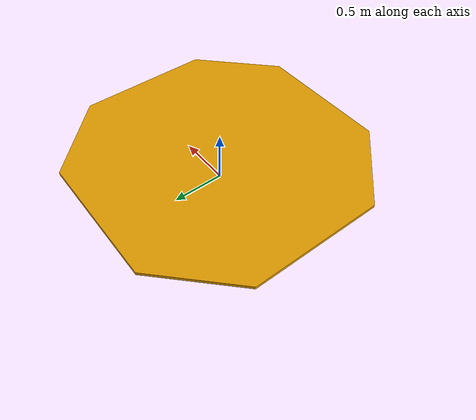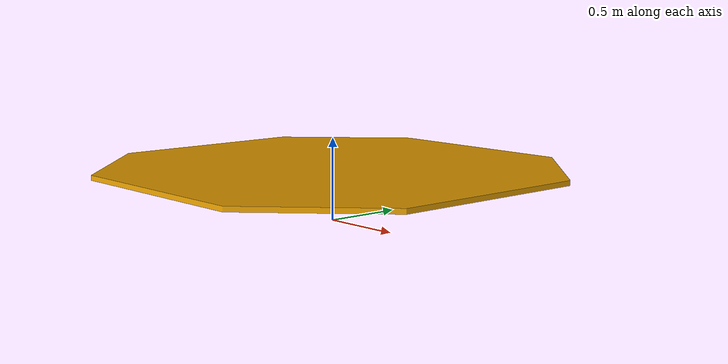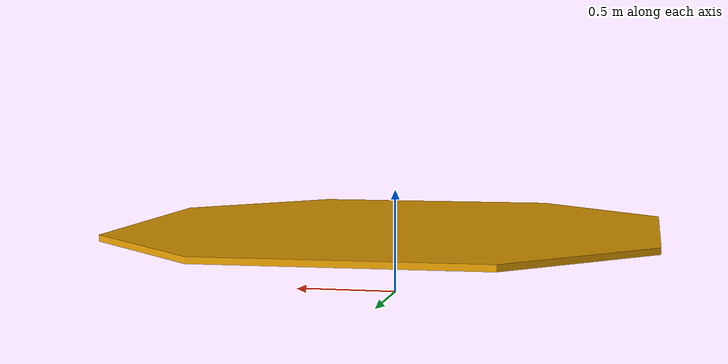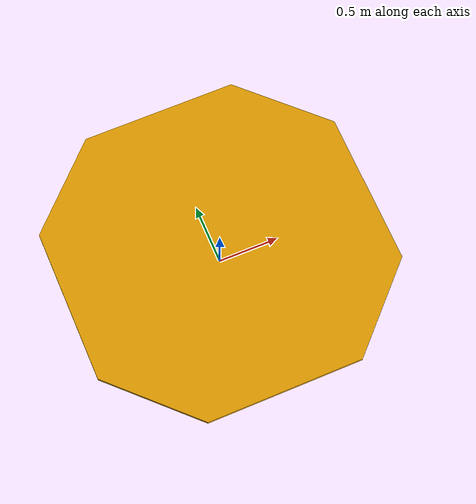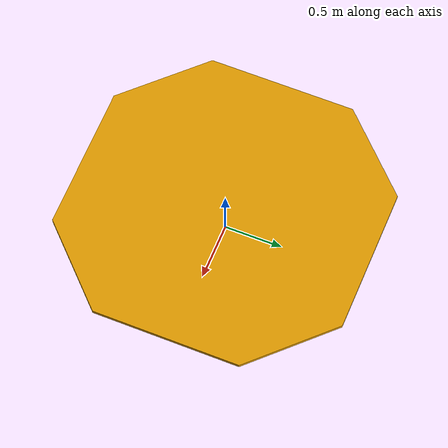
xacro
<?xml version="1.0"?>
<robot name="small_ring"  xmlns:xacro="http://www.ros.org/wiki/xacro">
	<xacro:include filename="$(find ginko_description)/gazebo/transmission/small_ring.gazebo"/>

	<xacro:macro name="small_ring">
		<link name="small_ring_link0">
			<collision>
				<origin xyz="0 0 0" rpy="0 0 0"/>
				<geometry>
        			<mesh filename="package://ginko_description/meshes/stl/small_ring.stl"/>
				</geometry>
			</collision>
			<visual>
				<origin xyz="0 0 0" rpy="0 0 0"/>
				<geometry>
					<mesh filename="package://ginko_description/meshes/obj/small_ring.obj"/>
				</geometry>
			</visual>
			<inertial>
				<mass value="242.39250000"/>
				<origin xyz="0 0 0.01500000" rpy="0 0 0"/>
				<inertia
					ixx="109.87392319"
					ixy="0.00000000" iyy="109.87392319"
					ixz="0.00000000" iyz="0.00000000" izz="219.71148750"/>
			</inertial>
		</link>
	</xacro:macro>

	<xacro:small_ring />
	<xacro:small_ring_gazebo />
</robot>

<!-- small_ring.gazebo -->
<robot xmlns:xacro="http://www.ros.org/wiki/xacro">
	<xacro:include filename="$(find ginko_description)/gazebo/transmission/default_gazebo_params.xacro"/>
	<xacro:macro name="small_ring_gazebo">
		<link name="world" />
		<joint name="world_joint" type="revolute">
			<parent link="world"/>
			<child  link="small_ring_link0"/>
			<origin xyz="0 0 0.3" rpy="0 0 0"/>
			<axis xyz="0 0 1"/>
			<limit effort="0.0" lower="0.0" upper="0.0" velocity="0.0"/>
			<dynamics damping="0.1" friction="0.1"/>
		</joint>
		<gazebo reference="small_ring_link0">
			<static>true</static>
			<kp>1000000.00</kp>
			<mu1>1000</mu1>
			<mu2>500</mu2>
			<maxVel>0.0</maxVel>
			<minDepth>0.0</minDepth>
			<maxContacts>20</maxContacts>
			<selfCollide>true</selfCollide>
			<dampingFactor>0.0</dampingFactor>
		</gazebo>
	</xacro:macro>
</robot>
